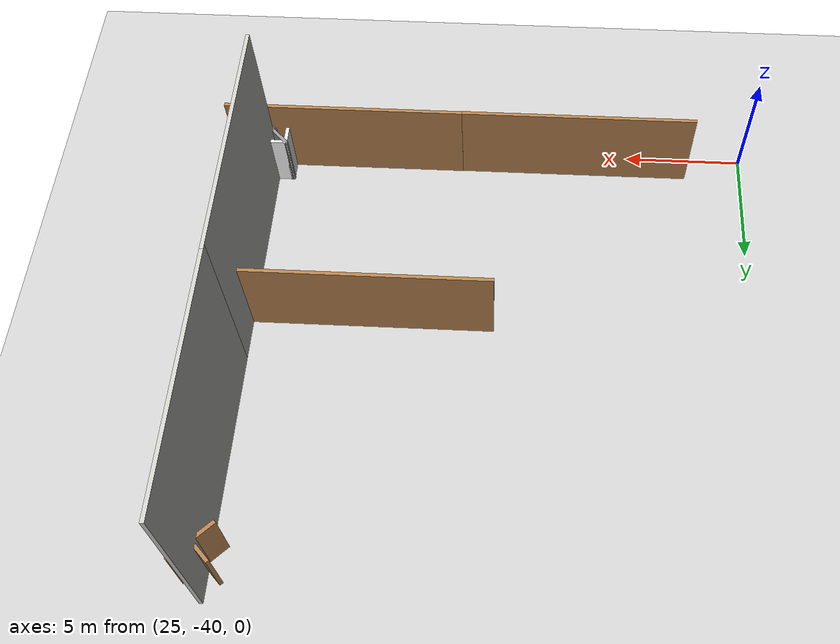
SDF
<sdf version="1.7">
 <world name="default">
  <model name="ground_plane">
   <static>1</static>
   <link name="link">
    <collision name="collision">
     <geometry><plane><normal>0 0 1</normal><size>100 100</size></plane></geometry>
     <surface>
      <contact><collide_bitmask>65535</collide_bitmask></contact>
      <friction><ode><mu>100</mu><mu2>50</mu2></ode></friction>
     </surface>
    </collision>
    <visual name="visual">
     <cast_shadows>0</cast_shadows>
     <geometry><plane><normal>0 0 1</normal><size>100 100</size></plane></geometry>
     <material>
      <script><uri>file://media/materials/scripts/gazebo.material</uri><name>Gazebo/Grey</name></script>
     </material>
    </visual>
   </link>
  </model>
  <model name="Untitled_0_clone_6_clone_clone_clone_clone">
   <link name="Wall_2">
    <pose>-0.307499 -1.8625 0 0 0 -1.5708</pose>
    <inertial>
     <mass>1</mass>
     <inertia><ixx>1</ixx><ixy>0</ixy><ixz>0</ixz><iyy>1</iyy><iyz>0</iyz><izz>1</izz></inertia>
    </inertial>
    <visual name="Wall_2_Visual">
     <pose>0 0 4.05 0 -0 0</pose>
     <geometry><box><size>10 0.15 8.1</size></box></geometry>
     <material>
      <script><uri>file://media/materials/scripts/gazebo.material</uri><name>Gazebo/CeilingTiled</name></script>
      <ambient>1 1 1 1</ambient>
      <shader type="pixel"><normal_map>__default__</normal_map></shader>
      <diffuse>1 1 1 1</diffuse>
      <specular>0 0 0 1</specular>
      <emissive>0 0 0 1</emissive>
     </material>
     <meta><layer>0</layer></meta>
    </visual>
    <collision name="Wall_2_Collision">
     <pose>0 0 4.05 0 -0 0</pose>
     <geometry><box><size>10 0.15 8.1</size></box></geometry>
     <surface>
      <friction>
       <ode><mu>1</mu><mu2>1</mu2><fdir1>0 0 0</fdir1><slip1>0</slip1><slip2>0</slip2></ode>
       <torsional>
        <coefficient>1</coefficient>
        <patch_radius>0</patch_radius>
        <surface_radius>0</surface_radius>
        <use_patch_radius>1</use_patch_radius>
        <ode><slip>0</slip></ode>
       </torsional>
      </friction>
      <bounce><restitution_coefficient>0</restitution_coefficient><threshold>1e+06</threshold></bounce>
      <contact>
       <collide_without_contact>0</collide_without_contact>
       <collide_without_contact_bitmask>1</collide_without_contact_bitmask>
       <collide_bitmask>1</collide_bitmask>
       <ode>
        <soft_cfm>0</soft_cfm>
        <soft_erp>0.2</soft_erp>
        <kp>1e+13</kp>
        <kd>1</kd>
        <max_vel>0.01</max_vel>
        <min_depth>0</min_depth>
       </ode>
       <bullet>
        <split_impulse>1</split_impulse>
        <split_impulse_penetration_threshold>-0.01</split_impulse_penetration_threshold>
        <soft_cfm>0</soft_cfm>
        <soft_erp>0.2</soft_erp>
        <kp>1e+13</kp>
        <kd>1</kd>
       </bullet>
      </contact>
     </surface>
    </collision>
   </link>
   <static>1</static>
   <pose>45.7624 -22.2039 0 0 -0 0</pose>
  </model>
  <model name="Untitled_0_clone_6_clone_clone_clone_clone_0">
   <link name="Wall_2">
    <pose>-0.307499 -1.8625 0 0 0 -1.5708</pose>
    <inertial>
     <mass>1</mass>
     <inertia><ixx>1</ixx><ixy>0</ixy><ixz>0</ixz><iyy>1</iyy><iyz>0</iyz><izz>1</izz></inertia>
    </inertial>
    <visual name="Wall_2_Visual">
     <pose>0 0 4.05 0 -0 0</pose>
     <geometry><box><size>10 0.15 8.1</size></box></geometry>
     <material>
      <script><uri>file://media/materials/scripts/gazebo.material</uri><name>Gazebo/CeilingTiled</name></script>
      <ambient>1 1 1 1</ambient>
      <shader type="pixel"><normal_map>__default__</normal_map></shader>
      <diffuse>1 1 1 1</diffuse>
      <specular>0 0 0 1</specular>
      <emissive>0 0 0 1</emissive>
     </material>
     <meta><layer>0</layer></meta>
    </visual>
    <collision name="Wall_2_Collision">
     <pose>0 0 4.05 0 -0 0</pose>
     <geometry><box><size>10 0.15 8.1</size></box></geometry>
     <surface>
      <friction>
       <ode><mu>1</mu><mu2>1</mu2><fdir1>0 0 0</fdir1><slip1>0</slip1><slip2>0</slip2></ode>
       <torsional>
        <coefficient>1</coefficient>
        <patch_radius>0</patch_radius>
        <surface_radius>0</surface_radius>
        <use_patch_radius>1</use_patch_radius>
        <ode><slip>0</slip></ode>
       </torsional>
      </friction>
      <bounce><restitution_coefficient>0</restitution_coefficient><threshold>1e+06</threshold></bounce>
      <contact>
       <collide_without_contact>0</collide_without_contact>
       <collide_without_contact_bitmask>1</collide_without_contact_bitmask>
       <collide_bitmask>1</collide_bitmask>
       <ode>
        <soft_cfm>0</soft_cfm>
        <soft_erp>0.2</soft_erp>
        <kp>1e+13</kp>
        <kd>1</kd>
        <max_vel>0.01</max_vel>
        <min_depth>0</min_depth>
       </ode>
       <bullet>
        <split_impulse>1</split_impulse>
        <split_impulse_penetration_threshold>-0.01</split_impulse_penetration_threshold>
        <soft_cfm>0</soft_cfm>
        <soft_erp>0.2</soft_erp>
        <kp>1e+13</kp>
        <kd>1</kd>
       </bullet>
      </contact>
     </surface>
    </collision>
   </link>
   <static>1</static>
   <pose>45.767 -32.0294 0 0 -0 0</pose>
  </model>
  <model name="Untitled_clone_clone_1_clone_1_clone_1_clone_0">
   <link name="Wall_0">
    <pose>-0.8775 -4.2975 0 0 -0 0</pose>
    <inertial>
     <mass>1</mass>
     <inertia><ixx>1</ixx><ixy>0</ixy><ixz>0</ixz><iyy>1</iyy><iyz>0</iyz><izz>1</izz></inertia>
    </inertial>
    <visual name="Wall_0_Visual">
     <pose>0 0 1.9 0 -0 0</pose>
     <geometry><box><size>10 0.15 3.8</size></box></geometry>
     <material>
      <script><uri>file://media/materials/scripts/gazebo.material</uri><name>Gazebo/Wood</name></script>
      <ambient>1 1 1 1</ambient>
      <shader type="pixel"><normal_map>__default__</normal_map></shader>
      <diffuse>1 1 1 1</diffuse>
      <specular>0.2 0.2 0.2 1</specular>
      <emissive>0 0 0 1</emissive>
     </material>
     <meta><layer>0</layer></meta>
    </visual>
    <collision name="Wall_0_Collision">
     <pose>0 0 1.9 0 -0 0</pose>
     <geometry><box><size>10 0.15 3.8</size></box></geometry>
     <surface>
      <friction>
       <ode><mu>1</mu><mu2>1</mu2><fdir1>0 0 0</fdir1><slip1>0</slip1><slip2>0</slip2></ode>
       <torsional>
        <coefficient>1</coefficient>
        <patch_radius>0</patch_radius>
        <surface_radius>0</surface_radius>
        <use_patch_radius>1</use_patch_radius>
        <ode><slip>0</slip></ode>
       </torsional>
      </friction>
      <bounce><restitution_coefficient>0</restitution_coefficient><threshold>1e+06</threshold></bounce>
      <contact>
       <collide_without_contact>0</collide_without_contact>
       <collide_without_contact_bitmask>1</collide_without_contact_bitmask>
       <collide_bitmask>1</collide_bitmask>
       <ode>
        <soft_cfm>0</soft_cfm>
        <soft_erp>0.2</soft_erp>
        <kp>1e+13</kp>
        <kd>1</kd>
        <max_vel>0.01</max_vel>
        <min_depth>0</min_depth>
       </ode>
       <bullet>
        <split_impulse>1</split_impulse>
        <split_impulse_penetration_threshold>-0.01</split_impulse_penetration_threshold>
        <soft_cfm>0</soft_cfm>
        <soft_erp>0.2</soft_erp>
        <kp>1e+13</kp>
        <kd>1</kd>
       </bullet>
      </contact>
     </surface>
    </collision>
   </link>
   <static>1</static>
   <pose>33.3137 -34.7894 0 0 -0 0</pose>
  </model>
  <model name="Untitled_clone_clone_1_clone_1_clone_1_clone_1">
   <link name="Wall_0">
    <pose>-0.8775 -4.2975 0 0 -0 0</pose>
    <inertial>
     <mass>1</mass>
     <inertia><ixx>1</ixx><ixy>0</ixy><ixz>0</ixz><iyy>1</iyy><iyz>0</iyz><izz>1</izz></inertia>
    </inertial>
    <visual name="Wall_0_Visual">
     <pose>0 0 1.9 0 -0 0</pose>
     <geometry><box><size>10 0.15 3.8</size></box></geometry>
     <material>
      <script><uri>file://media/materials/scripts/gazebo.material</uri><name>Gazebo/Wood</name></script>
      <ambient>1 1 1 1</ambient>
      <shader type="pixel"><normal_map>__default__</normal_map></shader>
      <diffuse>1 1 1 1</diffuse>
      <specular>0.2 0.2 0.2 1</specular>
      <emissive>0 0 0 1</emissive>
     </material>
     <meta><layer>0</layer></meta>
    </visual>
    <collision name="Wall_0_Collision">
     <pose>0 0 1.9 0 -0 0</pose>
     <geometry><box><size>10 0.15 3.8</size></box></geometry>
     <surface>
      <friction>
       <ode><mu>1</mu><mu2>1</mu2><fdir1>0 0 0</fdir1><slip1>0</slip1><slip2>0</slip2></ode>
       <torsional>
        <coefficient>1</coefficient>
        <patch_radius>0</patch_radius>
        <surface_radius>0</surface_radius>
        <use_patch_radius>1</use_patch_radius>
        <ode><slip>0</slip></ode>
       </torsional>
      </friction>
      <bounce><restitution_coefficient>0</restitution_coefficient><threshold>1e+06</threshold></bounce>
      <contact>
       <collide_without_contact>0</collide_without_contact>
       <collide_without_contact_bitmask>1</collide_without_contact_bitmask>
       <collide_bitmask>1</collide_bitmask>
       <ode>
        <soft_cfm>0</soft_cfm>
        <soft_erp>0.2</soft_erp>
        <kp>1e+13</kp>
        <kd>1</kd>
        <max_vel>0.01</max_vel>
        <min_depth>0</min_depth>
       </ode>
       <bullet>
        <split_impulse>1</split_impulse>
        <split_impulse_penetration_threshold>-0.01</split_impulse_penetration_threshold>
        <soft_cfm>0</soft_cfm>
        <soft_erp>0.2</soft_erp>
        <kp>1e+13</kp>
        <kd>1</kd>
       </bullet>
      </contact>
     </surface>
    </collision>
   </link>
   <static>1</static>
   <pose>43.1342 -34.7769 0 0 -0 0</pose>
  </model>
  <model name="Untitled_1_clone_1">
   <link name="Wall_10">
    <pose>4.92197 -3.43197 0 0 -0 1.5708</pose>
    <inertial>
     <mass>1</mass>
     <inertia><ixx>1</ixx><ixy>0</ixy><ixz>0</ixz><iyy>1</iyy><iyz>0</iyz><izz>1</izz></inertia>
    </inertial>
    <visual name="Wall_10_Visual">
     <pose>0 0 1.25 0 -0 0</pose>
     <geometry><box><size>1.5 0.15 2.5</size></box></geometry>
     <material>
      <script><uri>file://media/materials/scripts/gazebo.material</uri><name>Gazebo/CoM</name></script>
      <ambient>1 1 1 1</ambient>
      <shader type="pixel"><normal_map>__default__</normal_map></shader>
      <diffuse>1 1 1 1</diffuse>
      <specular>0 0 0 1</specular>
      <emissive>0 0 0 1</emissive>
     </material>
     <meta><layer>0</layer></meta>
    </visual>
    <collision name="Wall_10_Collision">
     <pose>0 0 1.25 0 -0 0</pose>
     <geometry><box><size>1.5 0.15 2.5</size></box></geometry>
     <surface>
      <friction>
       <ode><mu>1</mu><mu2>1</mu2><fdir1>0 0 0</fdir1><slip1>0</slip1><slip2>0</slip2></ode>
       <torsional>
        <coefficient>1</coefficient>
        <patch_radius>0</patch_radius>
        <surface_radius>0</surface_radius>
        <use_patch_radius>1</use_patch_radius>
        <ode><slip>0</slip></ode>
       </torsional>
      </friction>
      <bounce><restitution_coefficient>0</restitution_coefficient><threshold>1e+06</threshold></bounce>
      <contact>
       <collide_without_contact>0</collide_without_contact>
       <collide_without_contact_bitmask>1</collide_without_contact_bitmask>
       <collide_bitmask>1</collide_bitmask>
       <ode>
        <soft_cfm>0</soft_cfm>
        <soft_erp>0.2</soft_erp>
        <kp>1e+13</kp>
        <kd>1</kd>
        <max_vel>0.01</max_vel>
        <min_depth>0</min_depth>
       </ode>
       <bullet>
        <split_impulse>1</split_impulse>
        <split_impulse_penetration_threshold>-0.01</split_impulse_penetration_threshold>
        <soft_cfm>0</soft_cfm>
        <soft_erp>0.2</soft_erp>
        <kp>1e+13</kp>
        <kd>1</kd>
       </bullet>
      </contact>
     </surface>
    </collision>
   </link>
   <link name="Wall_11">
    <pose>5.59697 -3.43197 0 0 0 -0.785398</pose>
    <visual name="Wall_11_Visual">
     <pose>0 0 1.25 0 -0 0</pose>
     <geometry><box><size>2.05919 0.15 2.5</size></box></geometry>
     <material>
      <script><uri>file://media/materials/scripts/gazebo.material</uri><name>Gazebo/Grey</name></script>
      <ambient>1 1 1 1</ambient>
      <shader type="pixel"/>
     </material>
     <meta><layer>0</layer></meta>
    </visual>
    <collision name="Wall_11_Collision">
     <pose>0 0 1.25 0 -0 0</pose>
     <geometry><box><size>2.05919 0.15 2.5</size></box></geometry>
     <surface>
      <friction>
       <ode><mu>1</mu><mu2>1</mu2><fdir1>0 0 0</fdir1><slip1>0</slip1><slip2>0</slip2></ode>
       <torsional>
        <coefficient>1</coefficient>
        <patch_radius>0</patch_radius>
        <surface_radius>0</surface_radius>
        <use_patch_radius>1</use_patch_radius>
        <ode><slip>0</slip></ode>
       </torsional>
      </friction>
      <bounce><restitution_coefficient>0</restitution_coefficient><threshold>1e+06</threshold></bounce>
      <contact>
       <collide_without_contact>0</collide_without_contact>
       <collide_without_contact_bitmask>1</collide_without_contact_bitmask>
       <collide_bitmask>1</collide_bitmask>
       <ode>
        <soft_cfm>0</soft_cfm>
        <soft_erp>0.2</soft_erp>
        <kp>1e+13</kp>
        <kd>1</kd>
        <max_vel>0.01</max_vel>
        <min_depth>0</min_depth>
       </ode>
       <bullet>
        <split_impulse>1</split_impulse>
        <split_impulse_penetration_threshold>-0.01</split_impulse_penetration_threshold>
        <soft_cfm>0</soft_cfm>
        <soft_erp>0.2</soft_erp>
        <kp>1e+13</kp>
        <kd>1</kd>
       </bullet>
      </contact>
     </surface>
    </collision>
   </link>
   <link name="Wall_13">
    <pose>5.59697 -3.43197 0 0 -0 0.785398</pose>
    <visual name="Wall_13_Visual">
     <pose>0 0 1.25 0 -0 0</pose>
     <geometry><box><size>2.05919 0.15 2.5</size></box></geometry>
     <material>
      <script><uri>file://media/materials/scripts/gazebo.material</uri><name>Gazebo/Grey</name></script>
      <ambient>1 1 1 1</ambient>
      <shader type="pixel"/>
     </material>
     <meta><layer>0</layer></meta>
    </visual>
    <collision name="Wall_13_Collision">
     <pose>0 0 1.25 0 -0 0</pose>
     <geometry><box><size>2.05919 0.15 2.5</size></box></geometry>
     <surface>
      <friction>
       <ode><mu>1</mu><mu2>1</mu2><fdir1>0 0 0</fdir1><slip1>0</slip1><slip2>0</slip2></ode>
       <torsional>
        <coefficient>1</coefficient>
        <patch_radius>0</patch_radius>
        <surface_radius>0</surface_radius>
        <use_patch_radius>1</use_patch_radius>
        <ode><slip>0</slip></ode>
       </torsional>
      </friction>
      <bounce><restitution_coefficient>0</restitution_coefficient><threshold>1e+06</threshold></bounce>
      <contact>
       <collide_without_contact>0</collide_without_contact>
       <collide_without_contact_bitmask>1</collide_without_contact_bitmask>
       <collide_bitmask>1</collide_bitmask>
       <ode>
        <soft_cfm>0</soft_cfm>
        <soft_erp>0.2</soft_erp>
        <kp>1e+13</kp>
        <kd>1</kd>
        <max_vel>0.01</max_vel>
        <min_depth>0</min_depth>
       </ode>
       <bullet>
        <split_impulse>1</split_impulse>
        <split_impulse_penetration_threshold>-0.01</split_impulse_penetration_threshold>
        <soft_cfm>0</soft_cfm>
        <soft_erp>0.2</soft_erp>
        <kp>1e+13</kp>
        <kd>1</kd>
       </bullet>
      </contact>
     </surface>
    </collision>
   </link>
   <link name="Wall_7">
    <pose>5.59697 -2.75697 0 0 -0 0</pose>
    <inertial>
     <mass>1</mass>
     <inertia><ixx>1</ixx><ixy>0</ixy><ixz>0</ixz><iyy>1</iyy><iyz>0</iyz><izz>1</izz></inertia>
    </inertial>
    <visual name="Wall_7_Visual">
     <pose>0 0 1.25 0 -0 0</pose>
     <geometry><box><size>1.5 0.15 2.5</size></box></geometry>
     <material>
      <script><uri>file://media/materials/scripts/gazebo.material</uri><name>Gazebo/CoM</name></script>
      <ambient>1 1 1 1</ambient>
      <shader type="pixel"><normal_map>__default__</normal_map></shader>
      <diffuse>1 1 1 1</diffuse>
      <specular>0 0 0 1</specular>
      <emissive>0 0 0 1</emissive>
     </material>
     <meta><layer>0</layer></meta>
    </visual>
    <collision name="Wall_7_Collision">
     <pose>0 0 1.25 0 -0 0</pose>
     <geometry><box><size>1.5 0.15 2.5</size></box></geometry>
     <surface>
      <friction>
       <ode><mu>1</mu><mu2>1</mu2><fdir1>0 0 0</fdir1><slip1>0</slip1><slip2>0</slip2></ode>
       <torsional>
        <coefficient>1</coefficient>
        <patch_radius>0</patch_radius>
        <surface_radius>0</surface_radius>
        <use_patch_radius>1</use_patch_radius>
        <ode><slip>0</slip></ode>
       </torsional>
      </friction>
      <bounce><restitution_coefficient>0</restitution_coefficient><threshold>1e+06</threshold></bounce>
      <contact>
       <collide_without_contact>0</collide_without_contact>
       <collide_without_contact_bitmask>1</collide_without_contact_bitmask>
       <collide_bitmask>1</collide_bitmask>
       <ode>
        <soft_cfm>0</soft_cfm>
        <soft_erp>0.2</soft_erp>
        <kp>1e+13</kp>
        <kd>1</kd>
        <max_vel>0.01</max_vel>
        <min_depth>0</min_depth>
       </ode>
       <bullet>
        <split_impulse>1</split_impulse>
        <split_impulse_penetration_threshold>-0.01</split_impulse_penetration_threshold>
        <soft_cfm>0</soft_cfm>
        <soft_erp>0.2</soft_erp>
        <kp>1e+13</kp>
        <kd>1</kd>
       </bullet>
      </contact>
     </surface>
    </collision>
   </link>
   <link name="Wall_8">
    <pose>6.27197 -3.43197 0 0 0 -1.5708</pose>
    <inertial>
     <mass>1</mass>
     <inertia><ixx>1</ixx><ixy>0</ixy><ixz>0</ixz><iyy>1</iyy><iyz>0</iyz><izz>1</izz></inertia>
    </inertial>
    <visual name="Wall_8_Visual">
     <pose>0 0 1.25 0 -0 0</pose>
     <geometry><box><size>1.5 0.15 2.5</size></box></geometry>
     <material>
      <script><uri>file://media/materials/scripts/gazebo.material</uri><name>Gazebo/CoM</name></script>
      <ambient>1 1 1 1</ambient>
      <shader type="pixel"><normal_map>__default__</normal_map></shader>
      <diffuse>1 1 1 1</diffuse>
      <specular>0 0 0 1</specular>
      <emissive>0 0 0 1</emissive>
     </material>
     <meta><layer>0</layer></meta>
    </visual>
    <collision name="Wall_8_Collision">
     <pose>0 0 1.25 0 -0 0</pose>
     <geometry><box><size>1.5 0.15 2.5</size></box></geometry>
     <surface>
      <friction>
       <ode><mu>1</mu><mu2>1</mu2><fdir1>0 0 0</fdir1><slip1>0</slip1><slip2>0</slip2></ode>
       <torsional>
        <coefficient>1</coefficient>
        <patch_radius>0</patch_radius>
        <surface_radius>0</surface_radius>
        <use_patch_radius>1</use_patch_radius>
        <ode><slip>0</slip></ode>
       </torsional>
      </friction>
      <bounce><restitution_coefficient>0</restitution_coefficient><threshold>1e+06</threshold></bounce>
      <contact>
       <collide_without_contact>0</collide_without_contact>
       <collide_without_contact_bitmask>1</collide_without_contact_bitmask>
       <collide_bitmask>1</collide_bitmask>
       <ode>
        <soft_cfm>0</soft_cfm>
        <soft_erp>0.2</soft_erp>
        <kp>1e+13</kp>
        <kd>1</kd>
        <max_vel>0.01</max_vel>
        <min_depth>0</min_depth>
       </ode>
       <bullet>
        <split_impulse>1</split_impulse>
        <split_impulse_penetration_threshold>-0.01</split_impulse_penetration_threshold>
        <soft_cfm>0</soft_cfm>
        <soft_erp>0.2</soft_erp>
        <kp>1e+13</kp>
        <kd>1</kd>
       </bullet>
      </contact>
     </surface>
    </collision>
   </link>
   <link name="Wall_9">
    <pose>5.59697 -4.10697 0 0 -0 3.14159</pose>
    <inertial>
     <mass>1</mass>
     <inertia><ixx>1</ixx><ixy>0</ixy><ixz>0</ixz><iyy>1</iyy><iyz>0</iyz><izz>1</izz></inertia>
    </inertial>
    <visual name="Wall_9_Visual">
     <pose>0 0 1.25 0 -0 0</pose>
     <geometry><box><size>1.5 0.15 2.5</size></box></geometry>
     <material>
      <script><uri>file://media/materials/scripts/gazebo.material</uri><name>Gazebo/CoM</name></script>
      <ambient>1 1 1 1</ambient>
      <shader type="pixel"><normal_map>__default__</normal_map></shader>
      <diffuse>0.7 0.7 0.7 1</diffuse>
      <specular>0.01 0.01 0.01 1</specular>
      <emissive>0 0 0 1</emissive>
     </material>
     <meta><layer>0</layer></meta>
    </visual>
    <collision name="Wall_9_Collision">
     <pose>0 0 1.25 0 -0 0</pose>
     <geometry><box><size>1.5 0.15 2.5</size></box></geometry>
     <surface>
      <friction>
       <ode><mu>1</mu><mu2>1</mu2><fdir1>0 0 0</fdir1><slip1>0</slip1><slip2>0</slip2></ode>
       <torsional>
        <coefficient>1</coefficient>
        <patch_radius>0</patch_radius>
        <surface_radius>0</surface_radius>
        <use_patch_radius>1</use_patch_radius>
        <ode><slip>0</slip></ode>
       </torsional>
      </friction>
      <bounce><restitution_coefficient>0</restitution_coefficient><threshold>1e+06</threshold></bounce>
      <contact>
       <collide_without_contact>0</collide_without_contact>
       <collide_without_contact_bitmask>1</collide_without_contact_bitmask>
       <collide_bitmask>1</collide_bitmask>
       <ode>
        <soft_cfm>0</soft_cfm>
        <soft_erp>0.2</soft_erp>
        <kp>1e+13</kp>
        <kd>1</kd>
        <max_vel>0.01</max_vel>
        <min_depth>0</min_depth>
       </ode>
       <bullet>
        <split_impulse>1</split_impulse>
        <split_impulse_penetration_threshold>-0.01</split_impulse_penetration_threshold>
        <soft_cfm>0</soft_cfm>
        <soft_erp>0.2</soft_erp>
        <kp>1e+13</kp>
        <kd>1</kd>
       </bullet>
      </contact>
     </surface>
    </collision>
   </link>
   <static>1</static>
   <pose>39.8428 -35.4933 0 0 -0 0</pose>
  </model>
  <model name="Untitled_2_clone_0">
   <link name="Wall_10">
    <pose>-1.56423 -2.94394 0 0 -0 0.785398</pose>
    <inertial>
     <mass>1</mass>
     <inertia><ixx>1</ixx><ixy>0</ixy><ixz>0</ixz><iyy>1</iyy><iyz>0</iyz><izz>1</izz></inertia>
    </inertial>
    <visual name="Wall_10_Visual">
     <pose>0 0 1.25 0 -0 0</pose>
     <geometry><box><size>2.05919 0.15 2.5</size></box></geometry>
     <material>
      <script><uri>file://media/materials/scripts/gazebo.material</uri><name>Gazebo/Wood</name></script>
      <ambient>1 1 1 1</ambient>
      <shader type="pixel"><normal_map>__default__</normal_map></shader>
      <diffuse>1 1 1 1</diffuse>
      <specular>0.2 0.2 0.2 1</specular>
      <emissive>0 0 0 1</emissive>
     </material>
     <meta><layer>0</layer></meta>
    </visual>
    <collision name="Wall_10_Collision">
     <pose>0 0 1.25 0 -0 0</pose>
     <geometry><box><size>2.05919 0.15 2.5</size></box></geometry>
     <surface>
      <friction>
       <ode><mu>1</mu><mu2>1</mu2><fdir1>0 0 0</fdir1><slip1>0</slip1><slip2>0</slip2></ode>
       <torsional>
        <coefficient>1</coefficient>
        <patch_radius>0</patch_radius>
        <surface_radius>0</surface_radius>
        <use_patch_radius>1</use_patch_radius>
        <ode><slip>0</slip></ode>
       </torsional>
      </friction>
      <bounce><restitution_coefficient>0</restitution_coefficient><threshold>1e+06</threshold></bounce>
      <contact>
       <collide_without_contact>0</collide_without_contact>
       <collide_without_contact_bitmask>1</collide_without_contact_bitmask>
       <collide_bitmask>1</collide_bitmask>
       <ode>
        <soft_cfm>0</soft_cfm>
        <soft_erp>0.2</soft_erp>
        <kp>1e+13</kp>
        <kd>1</kd>
        <max_vel>0.01</max_vel>
        <min_depth>0</min_depth>
       </ode>
       <bullet>
        <split_impulse>1</split_impulse>
        <split_impulse_penetration_threshold>-0.01</split_impulse_penetration_threshold>
        <soft_cfm>0</soft_cfm>
        <soft_erp>0.2</soft_erp>
        <kp>1e+13</kp>
        <kd>1</kd>
       </bullet>
      </contact>
     </surface>
    </collision>
   </link>
   <link name="Wall_8">
    <pose>-1.55851 -2.94394 0 0 0 -0.785398</pose>
    <inertial>
     <mass>1</mass>
     <inertia><ixx>1</ixx><ixy>0</ixy><ixz>0</ixz><iyy>1</iyy><iyz>0</iyz><izz>1</izz></inertia>
    </inertial>
    <visual name="Wall_8_Visual">
     <pose>0 0 1.25 0 -0 0</pose>
     <geometry><box><size>2.05919 0.15 2.5</size></box></geometry>
     <material>
      <script><uri>file://media/materials/scripts/gazebo.material</uri><name>Gazebo/Wood</name></script>
      <ambient>1 1 1 1</ambient>
      <shader type="pixel"><normal_map>__default__</normal_map></shader>
      <diffuse>1 1 1 1</diffuse>
      <specular>0.2 0.2 0.2 1</specular>
      <emissive>0 0 0 1</emissive>
     </material>
     <meta><layer>0</layer></meta>
    </visual>
    <collision name="Wall_8_Collision">
     <pose>0 0 1.25 0 -0 0</pose>
     <geometry><box><size>2.05919 0.15 2.5</size></box></geometry>
     <surface>
      <friction>
       <ode><mu>1</mu><mu2>1</mu2><fdir1>0 0 0</fdir1><slip1>0</slip1><slip2>0</slip2></ode>
       <torsional>
        <coefficient>1</coefficient>
        <patch_radius>0</patch_radius>
        <surface_radius>0</surface_radius>
        <use_patch_radius>1</use_patch_radius>
        <ode><slip>0</slip></ode>
       </torsional>
      </friction>
      <bounce><restitution_coefficient>0</restitution_coefficient><threshold>1e+06</threshold></bounce>
      <contact>
       <collide_without_contact>0</collide_without_contact>
       <collide_without_contact_bitmask>1</collide_without_contact_bitmask>
       <collide_bitmask>1</collide_bitmask>
       <ode>
        <soft_cfm>0</soft_cfm>
        <soft_erp>0.2</soft_erp>
        <kp>1e+13</kp>
        <kd>1</kd>
        <max_vel>0.01</max_vel>
        <min_depth>0</min_depth>
       </ode>
       <bullet>
        <split_impulse>1</split_impulse>
        <split_impulse_penetration_threshold>-0.01</split_impulse_penetration_threshold>
        <soft_cfm>0</soft_cfm>
        <soft_erp>0.2</soft_erp>
        <kp>1e+13</kp>
        <kd>1</kd>
       </bullet>
      </contact>
     </surface>
    </collision>
   </link>
   <static>1</static>
   <pose>47.1215 -17.5883 0 0 -0 0</pose>
  </model>
  <model name="Untitled_clone_clone_0_clone_clone_1_clone_clone">
   <link name="Wall_0">
    <pose>-0.8775 -4.2975 0 0 -0 0</pose>
    <inertial>
     <mass>1</mass>
     <inertia><ixx>1</ixx><ixy>0</ixy><ixz>0</ixz><iyy>1</iyy><iyz>0</iyz><izz>1</izz></inertia>
    </inertial>
    <visual name="Wall_0_Visual">
     <pose>0 0 1.9 0 -0 0</pose>
     <geometry><box><size>10 0.15 3.8</size></box></geometry>
     <material>
      <script><uri>file://media/materials/scripts/gazebo.material</uri><name>Gazebo/Wood</name></script>
      <ambient>1 1 1 1</ambient>
      <shader type="pixel"><normal_map>__default__</normal_map></shader>
      <diffuse>1 1 1 1</diffuse>
      <specular>0.2 0.2 0.2 1</specular>
      <emissive>0 0 0 1</emissive>
     </material>
     <meta><layer>0</layer></meta>
    </visual>
    <collision name="Wall_0_Collision">
     <pose>0 0 1.9 0 -0 0</pose>
     <geometry><box><size>10 0.15 3.8</size></box></geometry>
     <surface>
      <friction>
       <ode><mu>1</mu><mu2>1</mu2><fdir1>0 0 0</fdir1><slip1>0</slip1><slip2>0</slip2></ode>
       <torsional>
        <coefficient>1</coefficient>
        <patch_radius>0</patch_radius>
        <surface_radius>0</surface_radius>
        <use_patch_radius>1</use_patch_radius>
        <ode><slip>0</slip></ode>
       </torsional>
      </friction>
      <bounce><restitution_coefficient>0</restitution_coefficient><threshold>1e+06</threshold></bounce>
      <contact>
       <collide_without_contact>0</collide_without_contact>
       <collide_without_contact_bitmask>1</collide_without_contact_bitmask>
       <collide_bitmask>1</collide_bitmask>
       <ode>
        <soft_cfm>0</soft_cfm>
        <soft_erp>0.2</soft_erp>
        <kp>1e+13</kp>
        <kd>1</kd>
        <max_vel>0.01</max_vel>
        <min_depth>0</min_depth>
       </ode>
       <bullet>
        <split_impulse>1</split_impulse>
        <split_impulse_penetration_threshold>-0.01</split_impulse_penetration_threshold>
        <soft_cfm>0</soft_cfm>
        <soft_erp>0.2</soft_erp>
        <kp>1e+13</kp>
        <kd>1</kd>
       </bullet>
      </contact>
     </surface>
    </collision>
   </link>
   <static>1</static>
   <pose>41.4045 -26.5551 0 0 -0 0</pose>
  </model>
 </world>
</sdf>
